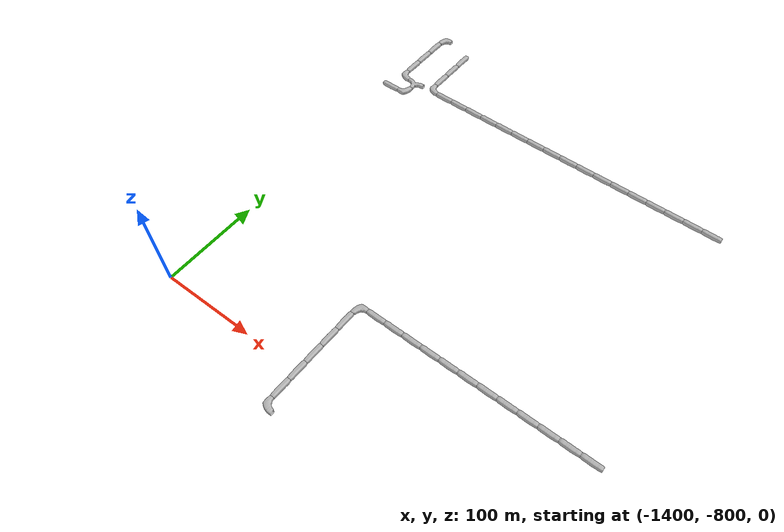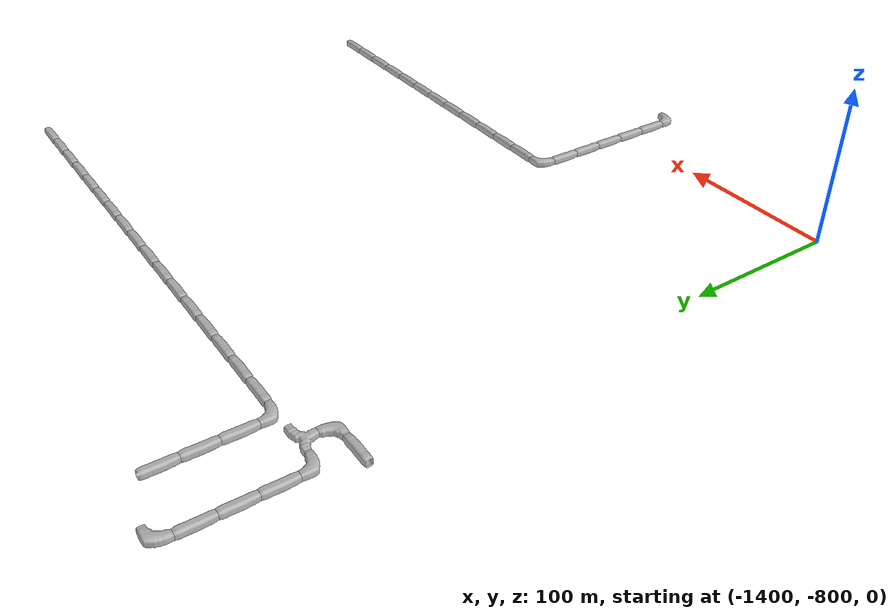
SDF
<sdf version="1.6">
 <world name="cave_16000_64">
  <include>
   <static>true</static>
   <name>cave_-50_-36</name>
   <pose>-1000 -720 0 0 0 1.5707963267948966</pose>
   <uri>model://cave_straight_20m</uri>
  </include>
  <include>
   <static>true</static>
   <name>cave_-51_-36</name>
   <pose>-1020 -720 0 0 0 1.5707963267948966</pose>
   <uri>model://cave_straight_20m</uri>
  </include>
  <include>
   <static>true</static>
   <name>cave_-52_-36</name>
   <pose>-1040 -720 0 0 0 1.5707963267948966</pose>
   <uri>model://cave_straight_20m</uri>
  </include>
  <include>
   <static>true</static>
   <name>cave_-53_-36</name>
   <pose>-1060 -720 0 0 0 1.5707963267948966</pose>
   <uri>model://cave_straight_20m</uri>
  </include>
  <include>
   <static>true</static>
   <name>cave_-54_-36</name>
   <pose>-1080 -720 0 0 0 1.5707963267948966</pose>
   <uri>model://cave_straight_20m</uri>
  </include>
  <include>
   <static>true</static>
   <name>cave_-55_-36</name>
   <pose>-1100 -720 0 0 0 1.5707963267948966</pose>
   <uri>model://cave_straight_20m</uri>
  </include>
  <include>
   <static>true</static>
   <name>cave_-56_-36</name>
   <pose>-1120 -720 0 0 0 1.5707963267948966</pose>
   <uri>model://cave_straight_20m</uri>
  </include>
  <include>
   <static>true</static>
   <name>cave_-57_-36</name>
   <pose>-1140 -720 0 0 0 1.5707963267948966</pose>
   <uri>model://cave_straight_20m</uri>
  </include>
  <include>
   <static>true</static>
   <name>cave_-58_-36</name>
   <pose>-1160 -720 0 0 0 1.5707963267948966</pose>
   <uri>model://cave_straight_20m</uri>
  </include>
  <include>
   <static>true</static>
   <name>cave_-59_-36</name>
   <pose>-1180 -720 0 0 0 1.5707963267948966</pose>
   <uri>model://cave_straight_20m</uri>
  </include>
  <include>
   <static>true</static>
   <name>cave_-60_-36</name>
   <pose>-1200 -720 0 0 0 1.5707963267948966</pose>
   <uri>model://cave_straight_20m</uri>
  </include>
  <include>
   <static>true</static>
   <name>cave_-61_-36</name>
   <pose>-1220 -720 0 0 0 1.5707963267948966</pose>
   <uri>model://cave_straight_20m</uri>
  </include>
  <include>
   <static>true</static>
   <name>cave_-62_-36</name>
   <pose>-1240 -720 0 0 0 -1.5707963267948966</pose>
   <uri>model://cave_L_20m</uri>
  </include>
  <include>
   <static>true</static>
   <name>cave_-62_-37</name>
   <pose>-1240 -740 0 0 0 0.0</pose>
   <uri>model://cave_straight_20m</uri>
  </include>
  <include>
   <static>true</static>
   <name>cave_-62_-38</name>
   <pose>-1240 -760 0 0 0 0.0</pose>
   <uri>model://cave_straight_20m</uri>
  </include>
  <include>
   <static>true</static>
   <name>cave_-62_-39</name>
   <pose>-1240 -780 0 0 0 0.0</pose>
   <uri>model://cave_straight_20m</uri>
  </include>
  <include>
   <static>true</static>
   <name>cave_-62_-40</name>
   <pose>-1240 -800 0 0 0 0.0</pose>
   <uri>model://cave_straight_20m</uri>
  </include>
  <include>
   <static>true</static>
   <name>cave_-62_-41</name>
   <pose>-1240 -820 0 0 0 0.0</pose>
   <uri>model://cave_straight_20m</uri>
  </include>
  <include>
   <static>true</static>
   <name>cave_-62_-42</name>
   <pose>-1240 -840 0 0 0 0.0</pose>
   <uri>model://cave_L_20m</uri>
  </include>
  <include>
   <static>true</static>
   <name>cave_-51_-23</name>
   <pose>-1020 -460 0 0 0 1.5707963267948966</pose>
   <uri>model://cave_straight_20m</uri>
  </include>
  <include>
   <static>true</static>
   <name>cave_-52_-23</name>
   <pose>-1040 -460 0 0 0 1.5707963267948966</pose>
   <uri>model://cave_straight_20m</uri>
  </include>
  <include>
   <static>true</static>
   <name>cave_-53_-23</name>
   <pose>-1060 -460 0 0 0 1.5707963267948966</pose>
   <uri>model://cave_straight_20m</uri>
  </include>
  <include>
   <static>true</static>
   <name>cave_-54_-23</name>
   <pose>-1080 -460 0 0 0 1.5707963267948966</pose>
   <uri>model://cave_straight_20m</uri>
  </include>
  <include>
   <static>true</static>
   <name>cave_-55_-23</name>
   <pose>-1100 -460 0 0 0 1.5707963267948966</pose>
   <uri>model://cave_straight_20m</uri>
  </include>
  <include>
   <static>true</static>
   <name>cave_-56_-23</name>
   <pose>-1120 -460 0 0 0 1.5707963267948966</pose>
   <uri>model://cave_straight_20m</uri>
  </include>
  <include>
   <static>true</static>
   <name>cave_-57_-23</name>
   <pose>-1140 -460 0 0 0 1.5707963267948966</pose>
   <uri>model://cave_straight_20m</uri>
  </include>
  <include>
   <static>true</static>
   <name>cave_-58_-23</name>
   <pose>-1160 -460 0 0 0 1.5707963267948966</pose>
   <uri>model://cave_straight_20m</uri>
  </include>
  <include>
   <static>true</static>
   <name>cave_-59_-23</name>
   <pose>-1180 -460 0 0 0 1.5707963267948966</pose>
   <uri>model://cave_straight_20m</uri>
  </include>
  <include>
   <static>true</static>
   <name>cave_-60_-23</name>
   <pose>-1200 -460 0 0 0 1.5707963267948966</pose>
   <uri>model://cave_straight_20m</uri>
  </include>
  <include>
   <static>true</static>
   <name>cave_-61_-23</name>
   <pose>-1220 -460 0 0 0 1.5707963267948966</pose>
   <uri>model://cave_straight_20m</uri>
  </include>
  <include>
   <static>true</static>
   <name>cave_-62_-23</name>
   <pose>-1240 -460 0 0 0 1.5707963267948966</pose>
   <uri>model://cave_straight_20m</uri>
  </include>
  <include>
   <static>true</static>
   <name>cave_-63_-23</name>
   <pose>-1260 -460 0 0 0 1.5707963267948966</pose>
   <uri>model://cave_straight_20m</uri>
  </include>
  <include>
   <static>true</static>
   <name>cave_-64_-23</name>
   <pose>-1280 -460 0 0 0 1.5707963267948966</pose>
   <uri>model://cave_straight_20m</uri>
  </include>
  <include>
   <static>true</static>
   <name>cave_-65_-23</name>
   <pose>-1300 -460 0 0 0 1.5707963267948966</pose>
   <uri>model://cave_straight_20m</uri>
  </include>
  <include>
   <static>true</static>
   <name>cave_-66_-23</name>
   <pose>-1320 -460 0 0 0 1.5707963267948966</pose>
   <uri>model://cave_straight_20m</uri>
  </include>
  <include>
   <static>true</static>
   <name>cave_-67_-23</name>
   <pose>-1340 -460 0 0 0 1.5707963267948966</pose>
   <uri>model://cave_straight_20m</uri>
  </include>
  <include>
   <static>true</static>
   <name>cave_-68_-23</name>
   <pose>-1360 -460 0 0 0 0.0</pose>
   <uri>model://cave_L_20m</uri>
  </include>
  <include>
   <static>true</static>
   <name>cave_-68_-22</name>
   <pose>-1360 -440 0 0 0 0.0</pose>
   <uri>model://cave_straight_20m</uri>
  </include>
  <include>
   <static>true</static>
   <name>cave_-68_-21</name>
   <pose>-1360 -420 0 0 0 0.0</pose>
   <uri>model://cave_straight_20m</uri>
  </include>
  <include>
   <static>true</static>
   <name>cave_-68_-20</name>
   <pose>-1360 -400 0 0 0 0.0</pose>
   <uri>model://cave_straight_20m</uri>
  </include>
  <include>
   <static>true</static>
   <name>cave_-70_-19</name>
   <pose>-1400 -380 0 0 0 -1.5707963267948966</pose>
   <uri>model://cave_L_20m</uri>
  </include>
  <include>
   <static>true</static>
   <name>cave_-70_-20</name>
   <pose>-1400 -400 0 0 0 0.0</pose>
   <uri>model://cave_straight_20m</uri>
  </include>
  <include>
   <static>true</static>
   <name>cave_-70_-21</name>
   <pose>-1400 -420 0 0 0 0.0</pose>
   <uri>model://cave_straight_20m</uri>
  </include>
  <include>
   <static>true</static>
   <name>cave_-70_-22</name>
   <pose>-1400 -440 0 0 0 0.0</pose>
   <uri>model://cave_straight_20m</uri>
  </include>
  <include>
   <static>true</static>
   <name>cave_-70_-23</name>
   <pose>-1400 -460 0 0 0 0.0</pose>
   <uri>model://cave_L_20m</uri>
  </include>
  <include>
   <static>true</static>
   <name>cave_-69_-23</name>
   <pose>-1380 -460 0 0 0 3.141592653589793</pose>
   <uri>model://cave_3way_20m</uri>
  </include>
  <include>
   <static>true</static>
   <name>cave_-69_-24</name>
   <pose>-1380 -480 0 0 0 1.5707963267948966</pose>
   <uri>model://cave_L_20m</uri>
  </include>
  <include>
   <static>true</static>
   <name>cave_-70_-24</name>
   <pose>-1400 -480 0 0 0 1.5707963267948966</pose>
   <uri>model://cave_straight_20m</uri>
  </include>
 </world>
</sdf>
